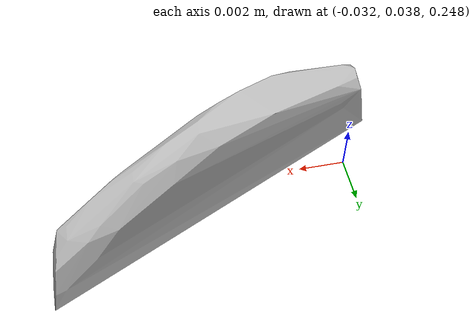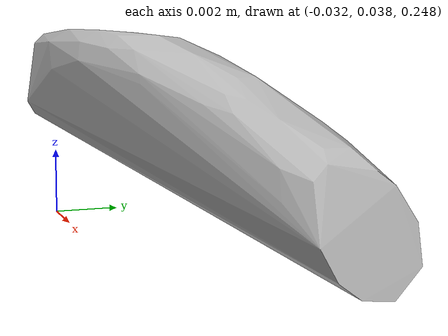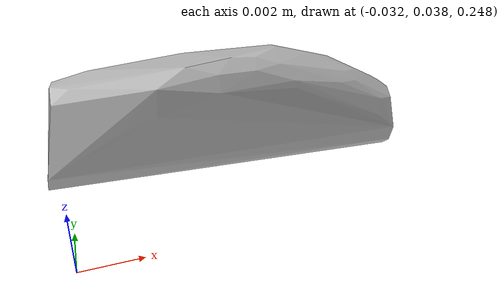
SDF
<?xml version="1.0"?>
<sdf version="1.7">
  <model name="vascular_partexport048">
    <link name="vascular_partexport048_body">
      <visual name="vascular_partexport048_visual">
        <geometry>
          <mesh>
            <uri>vascular_partexport048.obj</uri>
          </mesh>
        </geometry>
      </visual>
      <collision name="vascular_partexport048_collision">
        <geometry>
          <mesh>
            <uri>vascular_partexport048.obj</uri>
          </mesh>
        </geometry>
      </collision>
    </link>
    <frame name="vascular_partexport048_center">
      <pose relative_to="vascular_partexport048_body">0 0 0 0 0 0</pose>
    </frame>
  </model>
</sdf>
